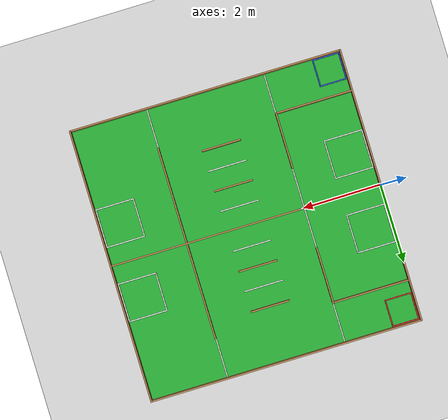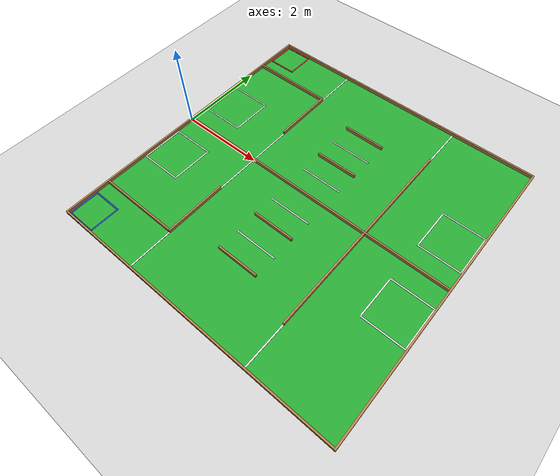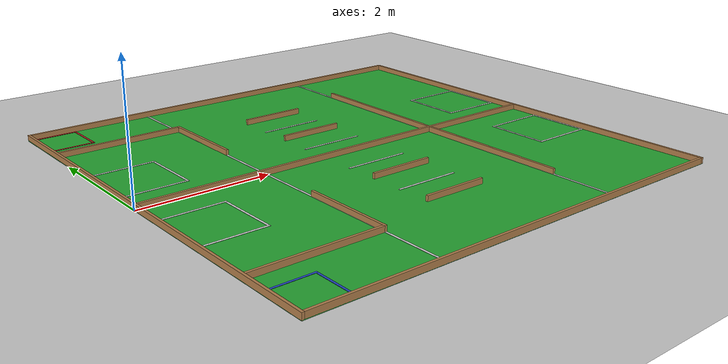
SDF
<?xml version="1.0" ?>
<sdf version="1.6">
  <world name="default">
    <include>
      <uri>model://sun</uri>
    </include>
    <include>
      <uri>model://ground_plane</uri>
    </include>
    <include>
      <uri>model://sp_2020</uri>
      <pose>0 0 0 0 0 0</pose>
    </include>
  </world>
</sdf>

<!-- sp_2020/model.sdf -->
<sdf version='1.6'>
　　<model name='sp_2020'>
　　　　<static>true</static>
　　　　<pose>0 0 0 0 0 0</pose>
　　　　<link name="base_link" />

    <link name="floor_main_link">

      <!-- The Green floor -->
      <visual name="green_floor_visual">
        <pose>3.5 0 0 0 0 0</pose>
        <geometry>
          <box>
            <size>7.0 7.0 0.01</size>
          </box>
        </geometry>
        <material>
          <script>
            <name>Gazebo/Green</name>
          </script>
        </material>
      </visual>

      <!-- White tape -->
      <visual name="tape_sto_r_1_visual">
        <pose>0.538 -0.477 0.005 0 0 0</pose>
        <geometry>
          <box>
            <size>1.000 0.030 0.01</size>
          </box>
        </geometry>
        <material>
          <script>
            <name>Gazebo/White</name>
          </script>
        </material>
      </visual>

      <visual name="tape_sto_r_2_visual">
        <pose>0.538 -1.447 0.005 0 0 0</pose>
        <geometry>
          <box>
            <size>1.000 0.030 0.01</size>
          </box>
        </geometry>
        <material>
          <script>
            <name>Gazebo/White</name>
          </script>
        </material>
      </visual>

      <visual name="tape_sto_r_3_visual">
        <pose>0.053 -0.962 0.005 0 0 0</pose>
        <geometry>
          <box>
            <size>0.030 0.940 0.01</size>
          </box>
        </geometry>
        <material>
          <script>
            <name>Gazebo/White</name>
          </script>
        </material>
      </visual>

      <visual name="tape_sto_r_4_visual">
        <pose>1.023 -0.962 0.005 0 0 0</pose>
        <geometry>
          <box>
            <size>0.030 0.940 0.01</size>
          </box>
        </geometry>
        <material>
          <script>
            <name>Gazebo/White</name>
          </script>
        </material>
      </visual>

      <visual name="tape_sto_l_1_visual">
        <pose>0.538 0.477 0.005 0 0 0</pose>
        <geometry>
          <box>
            <size>1.000 0.030 0.01</size>
          </box>
        </geometry>
        <material>
          <script>
            <name>Gazebo/White</name>
          </script>
        </material>
      </visual>

      <visual name="tape_sto_l_2_visual">
        <pose>0.538 1.447 0.005 0 0 0</pose>
        <geometry>
          <box>
            <size>1.000 0.030 0.01</size>
          </box>
        </geometry>
        <material>
          <script>
            <name>Gazebo/White</name>
          </script>
        </material>
      </visual>

      <visual name="tape_sto_l_3_visual">
        <pose>0.053 0.962 0.005 0 0 0</pose>
        <geometry>
          <box>
            <size>0.030 0.940 0.01</size>
          </box>
        </geometry>
        <material>
          <script>
            <name>Gazebo/White</name>
          </script>
        </material>
      </visual>

      <visual name="tape_sto_l_4_visual">
        <pose>1.023 0.962 0.005 0 0 0</pose>
        <geometry>
          <box>
            <size>0.030 0.940 0.01</size>
          </box>
        </geometry>
        <material>
          <script>
            <name>Gazebo/White</name>
          </script>
        </material>
      </visual>

      <visual name="tape_sto_lau_visual">
        <pose>1.977 0 0.005 0 0 0</pose>
        <geometry>
          <box>
            <size>0.030 7.0 0.01</size>
          </box>
        </geometry>
        <material>
          <script>
            <name>Gazebo/White</name>
          </script>
        </material>
      </visual>

      <visual name="tape_lau_spa_visual">
        <pose>5.015 0 0.005 0 0 0</pose>
        <geometry>
          <box>
            <size>0.030 7.0 0.01</size>
          </box>
        </geometry>
        <material>
          <script>
            <name>Gazebo/White</name>
          </script>
        </material>
      </visual>

      <visual name="tape_lau_r_1_visual">
        <pose>3.500 -0.519 0.005 0 0 0</pose>
        <geometry>
          <box>
            <size>1.000 0.030 0.01</size>
          </box>
        </geometry>
        <material>
          <script>
            <name>Gazebo/White</name>
          </script>
        </material>
      </visual>

      <visual name="tape_lau_r_2_visual">
        <pose>3.500 -1.557 0.005 0 0 0</pose>
        <geometry>
          <box>
            <size>1.000 0.030 0.01</size>
          </box>
        </geometry>
        <material>
          <script>
            <name>Gazebo/White</name>
          </script>
        </material>
      </visual>

      <visual name="tape_lau_l_1_visual">
        <pose>3.500 0.519 0.005 0 0 0</pose>
        <geometry>
          <box>
            <size>1.000 0.030 0.01</size>
          </box>
        </geometry>
        <material>
          <script>
            <name>Gazebo/White</name>
          </script>
        </material>
      </visual>

      <visual name="tape_lau_l_2_visual">
        <pose>3.500 1.557 0.005 0 0 0</pose>
        <geometry>
          <box>
            <size>1.000 0.030 0.01</size>
          </box>
        </geometry>
        <material>
          <script>
            <name>Gazebo/White</name>
          </script>
        </material>
      </visual>

      <visual name="tape_spa_r_1_visual">
        <pose>6.462 -0.477 0.005 0 0 0</pose>
        <geometry>
          <box>
            <size>1.000 0.030 0.01</size>
          </box>
        </geometry>
        <material>
          <script>
            <name>Gazebo/White</name>
          </script>
        </material>
      </visual>

      <visual name="tape_spa_r_2_visual">
        <pose>6.462 -1.447 0.005 0 0 0</pose>
        <geometry>
          <box>
            <size>1.000 0.030 0.01</size>
          </box>
        </geometry>
        <material>
          <script>
            <name>Gazebo/White</name>
          </script>
        </material>
      </visual>

      <visual name="tape_spa_r_3_visual">
        <pose>5.977 -0.962 0.005 0 0 0</pose>
        <geometry>
          <box>
            <size>0.030 0.940 0.01</size>
          </box>
        </geometry>
        <material>
          <script>
            <name>Gazebo/White</name>
          </script>
        </material>
      </visual>

      <visual name="tape_spa_r_4_visual">
        <pose>6.947 -0.962 0.005 0 0 0</pose>
        <geometry>
          <box>
            <size>0.030 0.940 0.01</size>
          </box>
        </geometry>
        <material>
          <script>
            <name>Gazebo/White</name>
          </script>
        </material>
      </visual>

      <visual name="tape_spa_l_1_visual">
        <pose>6.462 0.477 0.005 0 0 0</pose>
        <geometry>
          <box>
            <size>1.000 0.030 0.01</size>
          </box>
        </geometry>
        <material>
          <script>
            <name>Gazebo/White</name>
          </script>
        </material>
      </visual>

      <visual name="tape_spa_l_2_visual">
        <pose>6.462 1.447 0.005 0 0 0</pose>
        <geometry>
          <box>
            <size>1.000 0.030 0.01</size>
          </box>
        </geometry>
        <material>
          <script>
            <name>Gazebo/White</name>
          </script>
        </material>
      </visual>

      <visual name="tape_spa_l_3_visual">
        <pose>5.977 0.962 0.005 0 0 0</pose>
        <geometry>
          <box>
            <size>0.030 0.940 0.01</size>
          </box>
        </geometry>
        <material>
          <script>
            <name>Gazebo/White</name>
          </script>
        </material>
      </visual>

      <visual name="tape_spa_l_4_visual">
        <pose>6.947 0.962 0.005 0 0 0</pose>
        <geometry>
          <box>
            <size>0.030 0.940 0.01</size>
          </box>
        </geometry>
        <material>
          <script>
            <name>Gazebo/White</name>
          </script>
        </material>
      </visual>

      <!-- Blue tape -->
      <visual name="tape_sta_r_1_visual">
        <pose>0.388 -2.777 0.005 0 0 0</pose>
        <geometry>
          <box>
            <size>0.7 0.030 0.01</size>
          </box>
        </geometry>
        <material>
          <script>
            <name>Gazebo/Blue</name>
          </script>
        </material>
      </visual>

      <visual name="tape_sta_r_2_visual">
        <pose>0.388 -3.447 0.005 0 0 0</pose>
        <geometry>
          <box>
            <size>0.7 0.030 0.01</size>
          </box>
        </geometry>
        <material>
          <script>
            <name>Gazebo/Blue</name>
          </script>
        </material>
      </visual>

      <visual name="tape_sta_r_3_visual">
        <pose>0.053 -3.112 0.005 0 0 0</pose>
        <geometry>
          <box>
            <size>0.030 0.640 0.01</size>
          </box>
        </geometry>
        <material>
          <script>
            <name>Gazebo/Blue</name>
          </script>
        </material>
      </visual>

      <visual name="tape_sta_r_4_visual">
        <pose>0.723 -3.112 0.005 0 0 0</pose>
        <geometry>
          <box>
            <size>0.030 0.640 0.01</size>
          </box>
        </geometry>
        <material>
          <script>
            <name>Gazebo/Blue</name>
          </script>
        </material>
      </visual>

      <!-- Blue tape -->
      <visual name="tape_sta_l_1_visual">
        <pose>0.388 2.777 0.005 0 0 0</pose>
        <geometry>
          <box>
            <size>0.7 0.030 0.01</size>
          </box>
        </geometry>
        <material>
          <script>
            <name>Gazebo/Red</name>
          </script>
        </material>
      </visual>

      <visual name="tape_sta_l_2_visual">
        <pose>0.388 3.447 0.005 0 0 0</pose>
        <geometry>
          <box>
            <size>0.7 0.030 0.01</size>
          </box>
        </geometry>
        <material>
          <script>
            <name>Gazebo/Red</name>
          </script>
        </material>
      </visual>

      <visual name="tape_sta_l_3_visual">
        <pose>0.053 3.112 0.005 0 0 0</pose>
        <geometry>
          <box>
            <size>0.030 0.640 0.01</size>
          </box>
        </geometry>
        <material>
          <script>
            <name>Gazebo/Red</name>
          </script>
        </material>
      </visual>

      <visual name="tape_sta_l_4_visual">
        <pose>0.723 3.112 0.005 0 0 0</pose>
        <geometry>
          <box>
            <size>0.030 0.640 0.01</size>
          </box>
        </geometry>
        <material>
          <script>
            <name>Gazebo/Red</name>
          </script>
        </material>
      </visual>

      <collision name="floor_collision">
        <pose>3.5 0 0 0 0 0</pose>
        <geometry>
          <box>
            <size>7.0 7.0 0.01</size>
          </box>
        </geometry>
        <surface>
          <friction>
            <ode>
              <mu>100.0</mu>
              <mu2>50</mu2>
            </ode>
          </friction>
        </surface>
      </collision>
　　　　</link>

    <link name="wall_center_link">
　　　　　　<collision name="wall_center_collision">
	<pose>3.5 0 0.0445 0 0 0</pose>
	<geometry>
	　　<box>
	　　　　<size>6.924 0.038 0.089</size>
	　　</box>
	</geometry>
　　　　　　</collision>
　　　　　　<visual name="wall_center_visual">
　　　　　　　　<pose>3.5 0 0.0445 0 0 0</pose>
	<geometry>
	  <box>
	    <size>6.924 0.038 0.089</size>
	  </box>
	</geometry>
	<material>
	  <script>
            <uri>file://media/materials/scripts/gazebo.material</uri>
	    <name>Gazebo/Wood</name>
	  </script>
	  <ambient>1 1 1 1</ambient>
	</material>
	<meta>
	  <layer>0</layer>
	</meta>
      </visual>
    </link>

    <link name="wall_right_link">
　　　　　　<collision name="wall_right_collision">
	<pose>3.5 -3.481 0.0445 0 0 0</pose>
	<geometry>
	　　<box>
	　　　　<size>6.924 0.038 0.089</size>
	　　</box>
	</geometry>
　　　　　　</collision>
　　　　　　<visual name="wall_right_visual">
　　　　　　　　<pose>3.5 -3.481 0.0445 0 0 0</pose>
	<geometry>
	  <box>
	    <size>6.924 0.038 0.089</size>
	  </box>
	</geometry>
	<material>
	  <script>
            <uri>file://media/materials/scripts/gazebo.material</uri>
	    <name>Gazebo/Wood</name>
	  </script>
	  <ambient>1 1 1 1</ambient>
	</material>
	<meta>
	  <layer>0</layer>
	</meta>
      </visual>
    </link>

    <link name="wall_left_link">
　　　　　　<collision name="wall_left_collision">
	<pose>3.5 3.481 0.0445 0 0 0</pose>
	<geometry>
	　　<box>
	　　　　<size>6.924 0.038 0.089</size>
	　　</box>
	</geometry>
　　　　　　</collision>
　　　　　　<visual name="wall_right_visual">
　　　　　　　　<pose>3.5 3.481 0.0445 0 0 0</pose>
	<geometry>
	  <box>
	    <size>6.924 0.038 0.089</size>
	  </box>
	</geometry>
	<material>
	  <script>
            <uri>file://media/materials/scripts/gazebo.material</uri>
	    <name>Gazebo/Wood</name>
	  </script>
	  <ambient>1 1 1 1</ambient>
	</material>
	<meta>
	  <layer>0</layer>
	</meta>
      </visual>
    </link>

    <link name="wall_behind_link">
　　　　　　<collision name="wall_behind_collision">
	<pose>0.019 0 0.0445 0 0 0</pose>
	<geometry>
	　　<box>
	　　　　<size>0.038 7.0 0.089</size>
	　　</box>
	</geometry>
　　　　　　</collision>
　　　　　　<visual name="wall_behind_visual">
　　　　　　　　<pose>0.019 0 0.0445 0 0 0</pose>
	<geometry>
	  <box>
	    <size>0.038 7.0 0.089</size>
	  </box>
	</geometry>
	<material>
	  <script>
            <uri>file://media/materials/scripts/gazebo.material</uri>
	    <name>Gazebo/Wood</name>
	  </script>
	  <ambient>1 1 1 1</ambient>
	</material>
	<meta>
	  <layer>0</layer>
	</meta>
      </visual>
    </link>

    <link name="wall_behind_link">
　　　　　　<collision name="wall_behind_collision">
	<pose>6.981 0 0.0445 0 0 0</pose>
	<geometry>
	　　<box>
	　　　　<size>0.038 7.0 0.089</size>
	　　</box>
	</geometry>
　　　　　　</collision>
　　　　　　<visual name="wall_right_visual">
　　　　　　　　<pose>6.981 0 0.0445 0 0 0</pose>
	<geometry>
	  <box>
	    <size>0.038 7.0 0.089</size>
	  </box>
	</geometry>
	<material>
	  <script>
            <uri>file://media/materials/scripts/gazebo.material</uri>
	    <name>Gazebo/Wood</name>
	  </script>
	  <ambient>1 1 1 1</ambient>
	</material>
	<meta>
	  <layer>0</layer>
	</meta>
      </visual>
    </link>

    <link name="wall_stor_sta_r_link">
　　　　　　<collision name="wall_stor_sta_r_collision">
	<pose>1.000 -2.441 0.0445 0 0 0</pose>
	<geometry>
	　　<box>
	　　　　<size>1.924 0.038 0.089</size>
	　　</box>
	</geometry>
　　　　　　</collision>
　　　　　　<visual name="wall_stor_sta_r_visual">
　　　　　　　　<pose>1.000 -2.441 0.0445 0 0 0</pose>
	<geometry>
	  <box>
	    <size>1.924 0.038 0.089</size>
	  </box>
	</geometry>
	<material>
	  <script>
            <uri>file://media/materials/scripts/gazebo.material</uri>
	    <name>Gazebo/Wood</name>
	  </script>
	  <ambient>1 1 1 1</ambient>
	</material>
	<meta>
	  <layer>0</layer>
	</meta>
      </visual>
    </link>

    <link name="wall_stor_sta_l_link">
　　　　　　<collision name="wall_stor_sta_l_collision">
	<pose>1.000 2.441 0.0445 0 0 0</pose>
	<geometry>
	　　<box>
	　　　　<size>1.924 0.038 0.089</size>
	　　</box>
	</geometry>
　　　　　　</collision>
　　　　　　<visual name="wall_stor_sta_l_visual">
　　　　　　　　<pose>1.000 2.441 0.0445 0 0 0</pose>
	<geometry>
	  <box>
	    <size>1.924 0.038 0.089</size>
	  </box>
	</geometry>
	<material>
	  <script>
            <uri>file://media/materials/scripts/gazebo.material</uri>
	    <name>Gazebo/Wood</name>
	  </script>
	  <ambient>1 1 1 1</ambient>
	</material>
	<meta>
	  <layer>0</layer>
	</meta>
      </visual>
    </link>

    <link name="wall_stor_lau_r_link">
　　　　　　<collision name="wall_stor_lau_r_collision">
	<pose>1.981 1.7405 0.0445 0 0 0</pose>
	<geometry>
	　　<box>
	　　　　<size>0.038 1.435 0.089</size>
	　　</box>
	</geometry>
　　　　　　</collision>
　　　　　　<visual name="wall_stor_lau_r_visual">
　　　　　　　　<pose>1.981 1.7405 0.0445 0 0 0</pose>
	<geometry>
	  <box>
	    <size>0.038 1.435 0.089</size>
	  </box>
	</geometry>
	<material>
	  <script>
            <uri>file://media/materials/scripts/gazebo.material</uri>
	    <name>Gazebo/Wood</name>
	  </script>
	  <ambient>1 1 1 1</ambient>
	</material>
	<meta>
	  <layer>0</layer>
	</meta>
      </visual>
    </link>

    <link name="wall_stor_lau_l_link">
　　　　　　<collision name="wall_stor_lau_l_collision">
	<pose>1.981 -1.7405 0.0445 0 0 0</pose>
	<geometry>
	　　<box>
	　　　　<size>0.038 1.435 0.089</size>
	　　</box>
	</geometry>
　　　　　　</collision>
　　　　　　<visual name="wall_stor_lau_l_visual">
　　　　　　　　<pose>1.981 -1.7405 0.0445 0 0 0</pose>
	<geometry>
	  <box>
	    <size>0.038 1.435 0.089</size>
	  </box>
	</geometry>
	<material>
	  <script>
            <uri>file://media/materials/scripts/gazebo.material</uri>
	    <name>Gazebo/Wood</name>
	  </script>
	  <ambient>1 1 1 1</ambient>
	</material>
	<meta>
	  <layer>0</layer>
	</meta>
      </visual>
    </link>

    <link name="wall_launch_r1_link">
　　　　　　<collision name="wall_launch_r1_collision">
	<pose>3.500 -1.038 0.0445 0 0 0</pose>
	<geometry>
	　　<box>
	　　　　<size>1.000 0.038 0.089</size>
	　　</box>
	</geometry>
　　　　　　</collision>
　　　　　　<visual name="wall_launch_r1_visual">
　　　　　　　　<pose>3.500 -1.038 0.0445 0 0 0</pose>
	<geometry>
	  <box>
	    <size>1.000 0.038 0.089</size>
	  </box>
	</geometry>
	<material>
	  <script>
            <uri>file://media/materials/scripts/gazebo.material</uri>
	    <name>Gazebo/Wood</name>
	  </script>
	  <ambient>1 1 1 1</ambient>
	</material>
	<meta>
	  <layer>0</layer>
	</meta>
      </visual>
    </link>

    <link name="wall_launch_l1_link">
　　　　　　<collision name="wall_launch_l1_collision">
	<pose>3.500 1.038 0.0445 0 0 0</pose>
	<geometry>
	　　<box>
	　　　　<size>1.000 0.038 0.089</size>
	　　</box>
	</geometry>
　　　　　　</collision>
　　　　　　<visual name="wall_launch_l1_visual">
　　　　　　　　<pose>3.500 1.038 0.0445 0 0 0</pose>
	<geometry>
	  <box>
	    <size>1.000 0.038 0.089</size>
	  </box>
	</geometry>
	<material>
	  <script>
            <uri>file://media/materials/scripts/gazebo.material</uri>
	    <name>Gazebo/Wood</name>
	  </script>
	  <ambient>1 1 1 1</ambient>
	</material>
	<meta>
	  <layer>0</layer>
	</meta>
      </visual>
    </link>

    <link name="wall_launch_r2_link">
　　　　　　<collision name="wall_launch_r2_collision">
	<pose>3.500 -2.076 0.0445 0 0 0</pose>
	<geometry>
	　　<box>
	　　　　<size>1.000 0.038 0.089</size>
	　　</box>
	</geometry>
　　　　　　</collision>
　　　　　　<visual name="wall_launch_r2_visual">
　　　　　　　　<pose>3.500 -2.076 0.0445 0 0 0</pose>
	<geometry>
	  <box>
	    <size>1.000 0.038 0.089</size>
	  </box>
	</geometry>
	<material>
	  <script>
            <uri>file://media/materials/scripts/gazebo.material</uri>
	    <name>Gazebo/Wood</name>
	  </script>
	  <ambient>1 1 1 1</ambient>
	</material>
	<meta>
	  <layer>0</layer>
	</meta>
      </visual>
    </link>

    <link name="wall_launch_l2_link">
　　　　　　<collision name="wall_launch_l2_collision">
	<pose>3.500 2.076 0.0445 0 0 0</pose>
	<geometry>
	　　<box>
	　　　　<size>1.000 0.038 0.089</size>
	　　</box>
	</geometry>
　　　　　　</collision>
　　　　　　<visual name="wall_launch_l2_visual">
　　　　　　　　<pose>3.500 2.076 0.0445 0 0 0</pose>
	<geometry>
	  <box>
	    <size>1.000 0.038 0.089</size>
	  </box>
	</geometry>
	<material>
	  <script>
            <uri>file://media/materials/scripts/gazebo.material</uri>
	    <name>Gazebo/Wood</name>
	  </script>
	  <ambient>1 1 1 1</ambient>
	</material>
	<meta>
	  <layer>0</layer>
	</meta>
      </visual>
    </link>

　　　　<link name="wall_lau_spa_r_link">
　　　　　　<collision name="wall_lau_spa_r_collision">
	<pose>5.019 1.2405 0.0445 0 0 0</pose>
	<geometry>
	　　<box>
	　　　　<size>0.038 2.443 0.089</size>
	　　</box>
	</geometry>
　　　　　　</collision>
　　　　　　<visual name="wall_lau_spa_r_visual">
　　　　　　　　<pose>5.019 1.2405 0.0445 0 0 0</pose>
	<geometry>
	  <box>
	    <size>0.038 2.443 0.089</size>
	  </box>
	</geometry>
	<material>
	  <script>
            <uri>file://media/materials/scripts/gazebo.material</uri>
	    <name>Gazebo/Wood</name>
	  </script>
	  <ambient>1 1 1 1</ambient>
	</material>
	<meta>
	  <layer>0</layer>
	</meta>
      </visual>
    </link>

　　　　<link name="wall_lau_spa_l_link">
　　　　　　<collision name="wall_lau_spa_l_collision">
	<pose>5.019 -1.2405 0.0445 0 0 0</pose>
	<geometry>
	　　<box>
	　　　　<size>0.038 2.443 0.089</size>
	　　</box>
	</geometry>
　　　　　　</collision>
　　　　　　<visual name="wall_lau_spa_l_visual">
　　　　　　　　<pose>5.019 -1.2405 0.0445 0 0 0</pose>
	<geometry>
	  <box>
	    <size>0.038 2.443 0.089</size>
	  </box>
	</geometry>
	<material>
	  <script>
            <uri>file://media/materials/scripts/gazebo.material</uri>
	    <name>Gazebo/Wood</name>
	  </script>
	  <ambient>1 1 1 1</ambient>
	</material>
	<meta>
	  <layer>0</layer>
	</meta>
      </visual>
    </link>

  </model>
</sdf>
